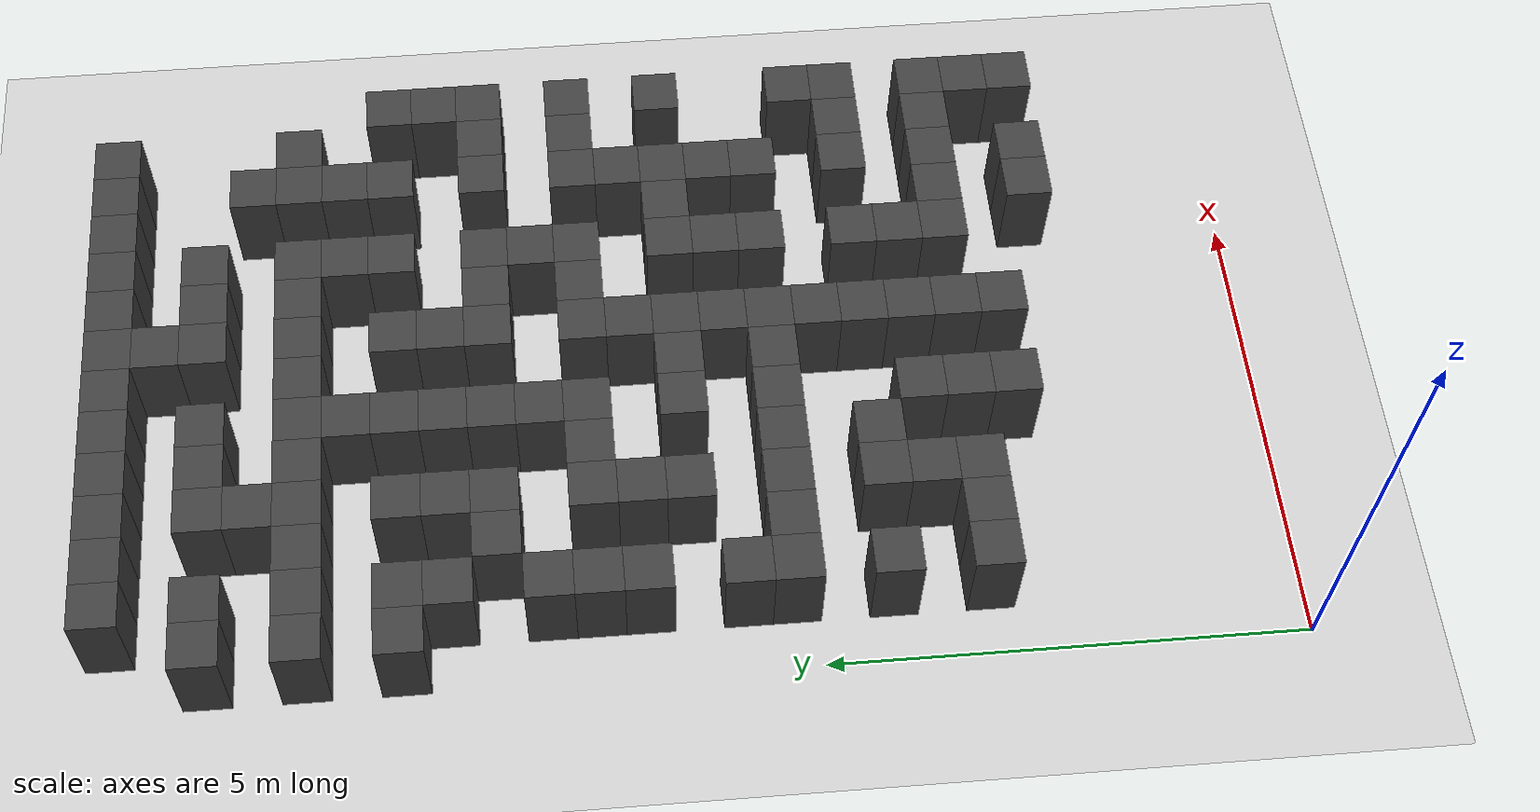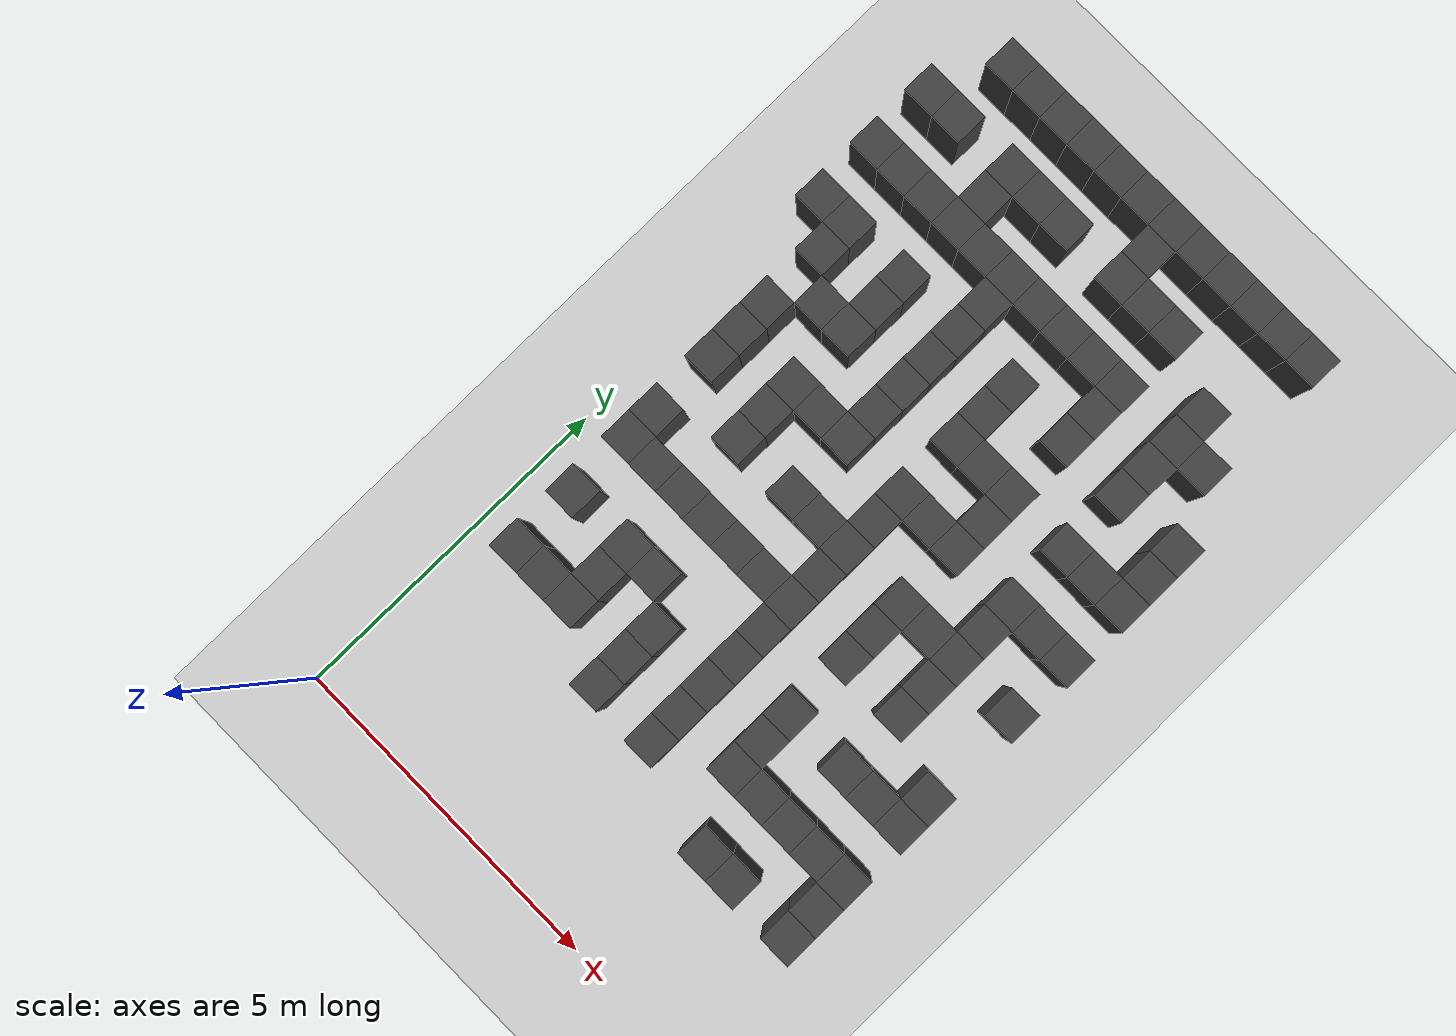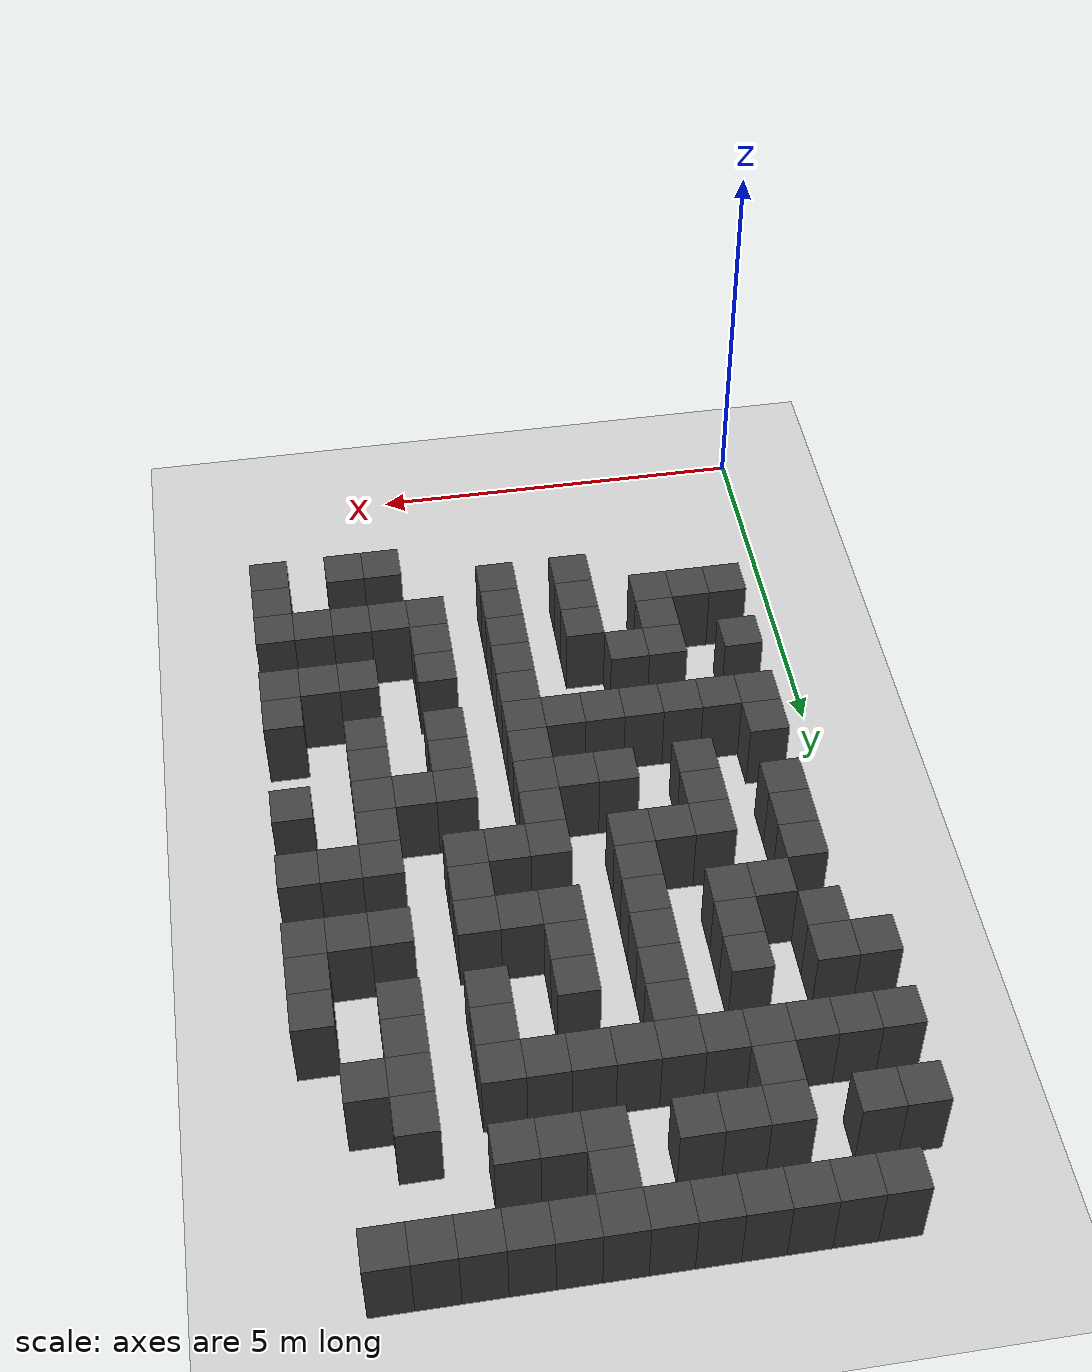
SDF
<sdf version="1.7">
 <world name="map_17508">
  <model name="ground_plane">
   <static>true</static>
   <link name="link">
    <collision name="collision">
     <geometry><plane><normal>0 0 1</normal><size>200 200</size></plane></geometry>
    </collision>
    <visual name="visual">
     <geometry><plane><normal>0 0 1</normal><size>200 200</size></plane></geometry>
     <material><ambient>0.8 0.8 0.8 1</ambient><diffuse>0.8 0.8 0.8 1</diffuse></material>
    </visual>
   </link>
  </model>
  <model name="maze_environment">
   <static>true</static>
   <link name="wall_26">
    <pose>0.750 12.250 0.500 0 0 0</pose>
    <collision name="col"><geometry><box><size>0.5 0.5 1.0</size></box></geometry></collision>
    <visual name="vis">
     <geometry><box><size>0.5 0.5 1.0</size></box></geometry>
     <material><ambient>0.15 0.15 0.15 1</ambient><diffuse>0.25 0.25 0.25 1</diffuse></material>
    </visual>
   </link>
   <link name="wall_27">
    <pose>1.250 12.250 0.500 0 0 0</pose>
    <collision name="col"><geometry><box><size>0.5 0.5 1.0</size></box></geometry></collision>
    <visual name="vis">
     <geometry><box><size>0.5 0.5 1.0</size></box></geometry>
     <material><ambient>0.15 0.15 0.15 1</ambient><diffuse>0.25 0.25 0.25 1</diffuse></material>
    </visual>
   </link>
   <link name="wall_28">
    <pose>1.750 12.250 0.500 0 0 0</pose>
    <collision name="col"><geometry><box><size>0.5 0.5 1.0</size></box></geometry></collision>
    <visual name="vis">
     <geometry><box><size>0.5 0.5 1.0</size></box></geometry>
     <material><ambient>0.15 0.15 0.15 1</ambient><diffuse>0.25 0.25 0.25 1</diffuse></material>
    </visual>
   </link>
   <link name="wall_29">
    <pose>2.250 12.250 0.500 0 0 0</pose>
    <collision name="col"><geometry><box><size>0.5 0.5 1.0</size></box></geometry></collision>
    <visual name="vis">
     <geometry><box><size>0.5 0.5 1.0</size></box></geometry>
     <material><ambient>0.15 0.15 0.15 1</ambient><diffuse>0.25 0.25 0.25 1</diffuse></material>
    </visual>
   </link>
   <link name="wall_30">
    <pose>2.750 12.250 0.500 0 0 0</pose>
    <collision name="col"><geometry><box><size>0.5 0.5 1.0</size></box></geometry></collision>
    <visual name="vis">
     <geometry><box><size>0.5 0.5 1.0</size></box></geometry>
     <material><ambient>0.15 0.15 0.15 1</ambient><diffuse>0.25 0.25 0.25 1</diffuse></material>
    </visual>
   </link>
   <link name="wall_31">
    <pose>3.250 12.250 0.500 0 0 0</pose>
    <collision name="col"><geometry><box><size>0.5 0.5 1.0</size></box></geometry></collision>
    <visual name="vis">
     <geometry><box><size>0.5 0.5 1.0</size></box></geometry>
     <material><ambient>0.15 0.15 0.15 1</ambient><diffuse>0.25 0.25 0.25 1</diffuse></material>
    </visual>
   </link>
   <link name="wall_32">
    <pose>3.750 12.250 0.500 0 0 0</pose>
    <collision name="col"><geometry><box><size>0.5 0.5 1.0</size></box></geometry></collision>
    <visual name="vis">
     <geometry><box><size>0.5 0.5 1.0</size></box></geometry>
     <material><ambient>0.15 0.15 0.15 1</ambient><diffuse>0.25 0.25 0.25 1</diffuse></material>
    </visual>
   </link>
   <link name="wall_33">
    <pose>4.250 12.250 0.500 0 0 0</pose>
    <collision name="col"><geometry><box><size>0.5 0.5 1.0</size></box></geometry></collision>
    <visual name="vis">
     <geometry><box><size>0.5 0.5 1.0</size></box></geometry>
     <material><ambient>0.15 0.15 0.15 1</ambient><diffuse>0.25 0.25 0.25 1</diffuse></material>
    </visual>
   </link>
   <link name="wall_34">
    <pose>4.750 12.250 0.500 0 0 0</pose>
    <collision name="col"><geometry><box><size>0.5 0.5 1.0</size></box></geometry></collision>
    <visual name="vis">
     <geometry><box><size>0.5 0.5 1.0</size></box></geometry>
     <material><ambient>0.15 0.15 0.15 1</ambient><diffuse>0.25 0.25 0.25 1</diffuse></material>
    </visual>
   </link>
   <link name="wall_35">
    <pose>5.250 12.250 0.500 0 0 0</pose>
    <collision name="col"><geometry><box><size>0.5 0.5 1.0</size></box></geometry></collision>
    <visual name="vis">
     <geometry><box><size>0.5 0.5 1.0</size></box></geometry>
     <material><ambient>0.15 0.15 0.15 1</ambient><diffuse>0.25 0.25 0.25 1</diffuse></material>
    </visual>
   </link>
   <link name="wall_36">
    <pose>5.750 12.250 0.500 0 0 0</pose>
    <collision name="col"><geometry><box><size>0.5 0.5 1.0</size></box></geometry></collision>
    <visual name="vis">
     <geometry><box><size>0.5 0.5 1.0</size></box></geometry>
     <material><ambient>0.15 0.15 0.15 1</ambient><diffuse>0.25 0.25 0.25 1</diffuse></material>
    </visual>
   </link>
   <link name="wall_37">
    <pose>6.250 12.250 0.500 0 0 0</pose>
    <collision name="col"><geometry><box><size>0.5 0.5 1.0</size></box></geometry></collision>
    <visual name="vis">
     <geometry><box><size>0.5 0.5 1.0</size></box></geometry>
     <material><ambient>0.15 0.15 0.15 1</ambient><diffuse>0.25 0.25 0.25 1</diffuse></material>
    </visual>
   </link>
   <link name="wall_54">
    <pose>3.750 11.750 0.500 0 0 0</pose>
    <collision name="col"><geometry><box><size>0.5 0.5 1.0</size></box></geometry></collision>
    <visual name="vis">
     <geometry><box><size>0.5 0.5 1.0</size></box></geometry>
     <material><ambient>0.15 0.15 0.15 1</ambient><diffuse>0.25 0.25 0.25 1</diffuse></material>
    </visual>
   </link>
   <link name="wall_76">
    <pose>0.250 11.250 0.500 0 0 0</pose>
    <collision name="col"><geometry><box><size>0.5 0.5 1.0</size></box></geometry></collision>
    <visual name="vis">
     <geometry><box><size>0.5 0.5 1.0</size></box></geometry>
     <material><ambient>0.15 0.15 0.15 1</ambient><diffuse>0.25 0.25 0.25 1</diffuse></material>
    </visual>
   </link>
   <link name="wall_77">
    <pose>0.750 11.250 0.500 0 0 0</pose>
    <collision name="col"><geometry><box><size>0.5 0.5 1.0</size></box></geometry></collision>
    <visual name="vis">
     <geometry><box><size>0.5 0.5 1.0</size></box></geometry>
     <material><ambient>0.15 0.15 0.15 1</ambient><diffuse>0.25 0.25 0.25 1</diffuse></material>
    </visual>
   </link>
   <link name="wall_78">
    <pose>1.750 11.250 0.500 0 0 0</pose>
    <collision name="col"><geometry><box><size>0.5 0.5 1.0</size></box></geometry></collision>
    <visual name="vis">
     <geometry><box><size>0.5 0.5 1.0</size></box></geometry>
     <material><ambient>0.15 0.15 0.15 1</ambient><diffuse>0.25 0.25 0.25 1</diffuse></material>
    </visual>
   </link>
   <link name="wall_79">
    <pose>2.250 11.250 0.500 0 0 0</pose>
    <collision name="col"><geometry><box><size>0.5 0.5 1.0</size></box></geometry></collision>
    <visual name="vis">
     <geometry><box><size>0.5 0.5 1.0</size></box></geometry>
     <material><ambient>0.15 0.15 0.15 1</ambient><diffuse>0.25 0.25 0.25 1</diffuse></material>
    </visual>
   </link>
   <link name="wall_80">
    <pose>2.750 11.250 0.500 0 0 0</pose>
    <collision name="col"><geometry><box><size>0.5 0.5 1.0</size></box></geometry></collision>
    <visual name="vis">
     <geometry><box><size>0.5 0.5 1.0</size></box></geometry>
     <material><ambient>0.15 0.15 0.15 1</ambient><diffuse>0.25 0.25 0.25 1</diffuse></material>
    </visual>
   </link>
   <link name="wall_81">
    <pose>3.750 11.250 0.500 0 0 0</pose>
    <collision name="col"><geometry><box><size>0.5 0.5 1.0</size></box></geometry></collision>
    <visual name="vis">
     <geometry><box><size>0.5 0.5 1.0</size></box></geometry>
     <material><ambient>0.15 0.15 0.15 1</ambient><diffuse>0.25 0.25 0.25 1</diffuse></material>
    </visual>
   </link>
   <link name="wall_82">
    <pose>4.250 11.250 0.500 0 0 0</pose>
    <collision name="col"><geometry><box><size>0.5 0.5 1.0</size></box></geometry></collision>
    <visual name="vis">
     <geometry><box><size>0.5 0.5 1.0</size></box></geometry>
     <material><ambient>0.15 0.15 0.15 1</ambient><diffuse>0.25 0.25 0.25 1</diffuse></material>
    </visual>
   </link>
   <link name="wall_83">
    <pose>4.750 11.250 0.500 0 0 0</pose>
    <collision name="col"><geometry><box><size>0.5 0.5 1.0</size></box></geometry></collision>
    <visual name="vis">
     <geometry><box><size>0.5 0.5 1.0</size></box></geometry>
     <material><ambient>0.15 0.15 0.15 1</ambient><diffuse>0.25 0.25 0.25 1</diffuse></material>
    </visual>
   </link>
   <link name="wall_100">
    <pose>1.750 10.750 0.500 0 0 0</pose>
    <collision name="col"><geometry><box><size>0.5 0.5 1.0</size></box></geometry></collision>
    <visual name="vis">
     <geometry><box><size>0.5 0.5 1.0</size></box></geometry>
     <material><ambient>0.15 0.15 0.15 1</ambient><diffuse>0.25 0.25 0.25 1</diffuse></material>
    </visual>
   </link>
   <link name="wall_101">
    <pose>5.750 10.750 0.500 0 0 0</pose>
    <collision name="col"><geometry><box><size>0.5 0.5 1.0</size></box></geometry></collision>
    <visual name="vis">
     <geometry><box><size>0.5 0.5 1.0</size></box></geometry>
     <material><ambient>0.15 0.15 0.15 1</ambient><diffuse>0.25 0.25 0.25 1</diffuse></material>
    </visual>
   </link>
   <link name="wall_125">
    <pose>0.250 10.250 0.500 0 0 0</pose>
    <collision name="col"><geometry><box><size>0.5 0.5 1.0</size></box></geometry></collision>
    <visual name="vis">
     <geometry><box><size>0.5 0.5 1.0</size></box></geometry>
     <material><ambient>0.15 0.15 0.15 1</ambient><diffuse>0.25 0.25 0.25 1</diffuse></material>
    </visual>
   </link>
   <link name="wall_126">
    <pose>0.750 10.250 0.500 0 0 0</pose>
    <collision name="col"><geometry><box><size>0.5 0.5 1.0</size></box></geometry></collision>
    <visual name="vis">
     <geometry><box><size>0.5 0.5 1.0</size></box></geometry>
     <material><ambient>0.15 0.15 0.15 1</ambient><diffuse>0.25 0.25 0.25 1</diffuse></material>
    </visual>
   </link>
   <link name="wall_127">
    <pose>1.250 10.250 0.500 0 0 0</pose>
    <collision name="col"><geometry><box><size>0.5 0.5 1.0</size></box></geometry></collision>
    <visual name="vis">
     <geometry><box><size>0.5 0.5 1.0</size></box></geometry>
     <material><ambient>0.15 0.15 0.15 1</ambient><diffuse>0.25 0.25 0.25 1</diffuse></material>
    </visual>
   </link>
   <link name="wall_128">
    <pose>1.750 10.250 0.500 0 0 0</pose>
    <collision name="col"><geometry><box><size>0.5 0.5 1.0</size></box></geometry></collision>
    <visual name="vis">
     <geometry><box><size>0.5 0.5 1.0</size></box></geometry>
     <material><ambient>0.15 0.15 0.15 1</ambient><diffuse>0.25 0.25 0.25 1</diffuse></material>
    </visual>
   </link>
   <link name="wall_129">
    <pose>2.250 10.250 0.500 0 0 0</pose>
    <collision name="col"><geometry><box><size>0.5 0.5 1.0</size></box></geometry></collision>
    <visual name="vis">
     <geometry><box><size>0.5 0.5 1.0</size></box></geometry>
     <material><ambient>0.15 0.15 0.15 1</ambient><diffuse>0.25 0.25 0.25 1</diffuse></material>
    </visual>
   </link>
   <link name="wall_130">
    <pose>2.750 10.250 0.500 0 0 0</pose>
    <collision name="col"><geometry><box><size>0.5 0.5 1.0</size></box></geometry></collision>
    <visual name="vis">
     <geometry><box><size>0.5 0.5 1.0</size></box></geometry>
     <material><ambient>0.15 0.15 0.15 1</ambient><diffuse>0.25 0.25 0.25 1</diffuse></material>
    </visual>
   </link>
   <link name="wall_131">
    <pose>3.250 10.250 0.500 0 0 0</pose>
    <collision name="col"><geometry><box><size>0.5 0.5 1.0</size></box></geometry></collision>
    <visual name="vis">
     <geometry><box><size>0.5 0.5 1.0</size></box></geometry>
     <material><ambient>0.15 0.15 0.15 1</ambient><diffuse>0.25 0.25 0.25 1</diffuse></material>
    </visual>
   </link>
   <link name="wall_132">
    <pose>3.750 10.250 0.500 0 0 0</pose>
    <collision name="col"><geometry><box><size>0.5 0.5 1.0</size></box></geometry></collision>
    <visual name="vis">
     <geometry><box><size>0.5 0.5 1.0</size></box></geometry>
     <material><ambient>0.15 0.15 0.15 1</ambient><diffuse>0.25 0.25 0.25 1</diffuse></material>
    </visual>
   </link>
   <link name="wall_133">
    <pose>4.250 10.250 0.500 0 0 0</pose>
    <collision name="col"><geometry><box><size>0.5 0.5 1.0</size></box></geometry></collision>
    <visual name="vis">
     <geometry><box><size>0.5 0.5 1.0</size></box></geometry>
     <material><ambient>0.15 0.15 0.15 1</ambient><diffuse>0.25 0.25 0.25 1</diffuse></material>
    </visual>
   </link>
   <link name="wall_134">
    <pose>4.750 10.250 0.500 0 0 0</pose>
    <collision name="col"><geometry><box><size>0.5 0.5 1.0</size></box></geometry></collision>
    <visual name="vis">
     <geometry><box><size>0.5 0.5 1.0</size></box></geometry>
     <material><ambient>0.15 0.15 0.15 1</ambient><diffuse>0.25 0.25 0.25 1</diffuse></material>
    </visual>
   </link>
   <link name="wall_135">
    <pose>5.750 10.250 0.500 0 0 0</pose>
    <collision name="col"><geometry><box><size>0.5 0.5 1.0</size></box></geometry></collision>
    <visual name="vis">
     <geometry><box><size>0.5 0.5 1.0</size></box></geometry>
     <material><ambient>0.15 0.15 0.15 1</ambient><diffuse>0.25 0.25 0.25 1</diffuse></material>
    </visual>
   </link>
   <link name="wall_136">
    <pose>6.250 10.250 0.500 0 0 0</pose>
    <collision name="col"><geometry><box><size>0.5 0.5 1.0</size></box></geometry></collision>
    <visual name="vis">
     <geometry><box><size>0.5 0.5 1.0</size></box></geometry>
     <material><ambient>0.15 0.15 0.15 1</ambient><diffuse>0.25 0.25 0.25 1</diffuse></material>
    </visual>
   </link>
   <link name="wall_152">
    <pose>2.750 9.750 0.500 0 0 0</pose>
    <collision name="col"><geometry><box><size>0.5 0.5 1.0</size></box></geometry></collision>
    <visual name="vis">
     <geometry><box><size>0.5 0.5 1.0</size></box></geometry>
     <material><ambient>0.15 0.15 0.15 1</ambient><diffuse>0.25 0.25 0.25 1</diffuse></material>
    </visual>
   </link>
   <link name="wall_153">
    <pose>4.750 9.750 0.500 0 0 0</pose>
    <collision name="col"><geometry><box><size>0.5 0.5 1.0</size></box></geometry></collision>
    <visual name="vis">
     <geometry><box><size>0.5 0.5 1.0</size></box></geometry>
     <material><ambient>0.15 0.15 0.15 1</ambient><diffuse>0.25 0.25 0.25 1</diffuse></material>
    </visual>
   </link>
   <link name="wall_154">
    <pose>5.750 9.750 0.500 0 0 0</pose>
    <collision name="col"><geometry><box><size>0.5 0.5 1.0</size></box></geometry></collision>
    <visual name="vis">
     <geometry><box><size>0.5 0.5 1.0</size></box></geometry>
     <material><ambient>0.15 0.15 0.15 1</ambient><diffuse>0.25 0.25 0.25 1</diffuse></material>
    </visual>
   </link>
   <link name="wall_177">
    <pose>0.250 9.250 0.500 0 0 0</pose>
    <collision name="col"><geometry><box><size>0.5 0.5 1.0</size></box></geometry></collision>
    <visual name="vis">
     <geometry><box><size>0.5 0.5 1.0</size></box></geometry>
     <material><ambient>0.15 0.15 0.15 1</ambient><diffuse>0.25 0.25 0.25 1</diffuse></material>
    </visual>
   </link>
   <link name="wall_178">
    <pose>0.750 9.250 0.500 0 0 0</pose>
    <collision name="col"><geometry><box><size>0.5 0.5 1.0</size></box></geometry></collision>
    <visual name="vis">
     <geometry><box><size>0.5 0.5 1.0</size></box></geometry>
     <material><ambient>0.15 0.15 0.15 1</ambient><diffuse>0.25 0.25 0.25 1</diffuse></material>
    </visual>
   </link>
   <link name="wall_179">
    <pose>1.750 9.250 0.500 0 0 0</pose>
    <collision name="col"><geometry><box><size>0.5 0.5 1.0</size></box></geometry></collision>
    <visual name="vis">
     <geometry><box><size>0.5 0.5 1.0</size></box></geometry>
     <material><ambient>0.15 0.15 0.15 1</ambient><diffuse>0.25 0.25 0.25 1</diffuse></material>
    </visual>
   </link>
   <link name="wall_180">
    <pose>2.750 9.250 0.500 0 0 0</pose>
    <collision name="col"><geometry><box><size>0.5 0.5 1.0</size></box></geometry></collision>
    <visual name="vis">
     <geometry><box><size>0.5 0.5 1.0</size></box></geometry>
     <material><ambient>0.15 0.15 0.15 1</ambient><diffuse>0.25 0.25 0.25 1</diffuse></material>
    </visual>
   </link>
   <link name="wall_181">
    <pose>3.750 9.250 0.500 0 0 0</pose>
    <collision name="col"><geometry><box><size>0.5 0.5 1.0</size></box></geometry></collision>
    <visual name="vis">
     <geometry><box><size>0.5 0.5 1.0</size></box></geometry>
     <material><ambient>0.15 0.15 0.15 1</ambient><diffuse>0.25 0.25 0.25 1</diffuse></material>
    </visual>
   </link>
   <link name="wall_182">
    <pose>4.750 9.250 0.500 0 0 0</pose>
    <collision name="col"><geometry><box><size>0.5 0.5 1.0</size></box></geometry></collision>
    <visual name="vis">
     <geometry><box><size>0.5 0.5 1.0</size></box></geometry>
     <material><ambient>0.15 0.15 0.15 1</ambient><diffuse>0.25 0.25 0.25 1</diffuse></material>
    </visual>
   </link>
   <link name="wall_183">
    <pose>5.750 9.250 0.500 0 0 0</pose>
    <collision name="col"><geometry><box><size>0.5 0.5 1.0</size></box></geometry></collision>
    <visual name="vis">
     <geometry><box><size>0.5 0.5 1.0</size></box></geometry>
     <material><ambient>0.15 0.15 0.15 1</ambient><diffuse>0.25 0.25 0.25 1</diffuse></material>
    </visual>
   </link>
   <link name="wall_184">
    <pose>6.750 9.250 0.500 0 0 0</pose>
    <collision name="col"><geometry><box><size>0.5 0.5 1.0</size></box></geometry></collision>
    <visual name="vis">
     <geometry><box><size>0.5 0.5 1.0</size></box></geometry>
     <material><ambient>0.15 0.15 0.15 1</ambient><diffuse>0.25 0.25 0.25 1</diffuse></material>
    </visual>
   </link>
   <link name="wall_196">
    <pose>0.750 8.750 0.500 0 0 0</pose>
    <collision name="col"><geometry><box><size>0.5 0.5 1.0</size></box></geometry></collision>
    <visual name="vis">
     <geometry><box><size>0.5 0.5 1.0</size></box></geometry>
     <material><ambient>0.15 0.15 0.15 1</ambient><diffuse>0.25 0.25 0.25 1</diffuse></material>
    </visual>
   </link>
   <link name="wall_197">
    <pose>1.750 8.750 0.500 0 0 0</pose>
    <collision name="col"><geometry><box><size>0.5 0.5 1.0</size></box></geometry></collision>
    <visual name="vis">
     <geometry><box><size>0.5 0.5 1.0</size></box></geometry>
     <material><ambient>0.15 0.15 0.15 1</ambient><diffuse>0.25 0.25 0.25 1</diffuse></material>
    </visual>
   </link>
   <link name="wall_198">
    <pose>2.750 8.750 0.500 0 0 0</pose>
    <collision name="col"><geometry><box><size>0.5 0.5 1.0</size></box></geometry></collision>
    <visual name="vis">
     <geometry><box><size>0.5 0.5 1.0</size></box></geometry>
     <material><ambient>0.15 0.15 0.15 1</ambient><diffuse>0.25 0.25 0.25 1</diffuse></material>
    </visual>
   </link>
   <link name="wall_199">
    <pose>3.750 8.750 0.500 0 0 0</pose>
    <collision name="col"><geometry><box><size>0.5 0.5 1.0</size></box></geometry></collision>
    <visual name="vis">
     <geometry><box><size>0.5 0.5 1.0</size></box></geometry>
     <material><ambient>0.15 0.15 0.15 1</ambient><diffuse>0.25 0.25 0.25 1</diffuse></material>
    </visual>
   </link>
   <link name="wall_200">
    <pose>6.750 8.750 0.500 0 0 0</pose>
    <collision name="col"><geometry><box><size>0.5 0.5 1.0</size></box></geometry></collision>
    <visual name="vis">
     <geometry><box><size>0.5 0.5 1.0</size></box></geometry>
     <material><ambient>0.15 0.15 0.15 1</ambient><diffuse>0.25 0.25 0.25 1</diffuse></material>
    </visual>
   </link>
   <link name="wall_225">
    <pose>1.250 8.250 0.500 0 0 0</pose>
    <collision name="col"><geometry><box><size>0.5 0.5 1.0</size></box></geometry></collision>
    <visual name="vis">
     <geometry><box><size>0.5 0.5 1.0</size></box></geometry>
     <material><ambient>0.15 0.15 0.15 1</ambient><diffuse>0.25 0.25 0.25 1</diffuse></material>
    </visual>
   </link>
   <link name="wall_226">
    <pose>1.750 8.250 0.500 0 0 0</pose>
    <collision name="col"><geometry><box><size>0.5 0.5 1.0</size></box></geometry></collision>
    <visual name="vis">
     <geometry><box><size>0.5 0.5 1.0</size></box></geometry>
     <material><ambient>0.15 0.15 0.15 1</ambient><diffuse>0.25 0.25 0.25 1</diffuse></material>
    </visual>
   </link>
   <link name="wall_227">
    <pose>2.750 8.250 0.500 0 0 0</pose>
    <collision name="col"><geometry><box><size>0.5 0.5 1.0</size></box></geometry></collision>
    <visual name="vis">
     <geometry><box><size>0.5 0.5 1.0</size></box></geometry>
     <material><ambient>0.15 0.15 0.15 1</ambient><diffuse>0.25 0.25 0.25 1</diffuse></material>
    </visual>
   </link>
   <link name="wall_228">
    <pose>3.750 8.250 0.500 0 0 0</pose>
    <collision name="col"><geometry><box><size>0.5 0.5 1.0</size></box></geometry></collision>
    <visual name="vis">
     <geometry><box><size>0.5 0.5 1.0</size></box></geometry>
     <material><ambient>0.15 0.15 0.15 1</ambient><diffuse>0.25 0.25 0.25 1</diffuse></material>
    </visual>
   </link>
   <link name="wall_229">
    <pose>4.250 8.250 0.500 0 0 0</pose>
    <collision name="col"><geometry><box><size>0.5 0.5 1.0</size></box></geometry></collision>
    <visual name="vis">
     <geometry><box><size>0.5 0.5 1.0</size></box></geometry>
     <material><ambient>0.15 0.15 0.15 1</ambient><diffuse>0.25 0.25 0.25 1</diffuse></material>
    </visual>
   </link>
   <link name="wall_230">
    <pose>4.750 8.250 0.500 0 0 0</pose>
    <collision name="col"><geometry><box><size>0.5 0.5 1.0</size></box></geometry></collision>
    <visual name="vis">
     <geometry><box><size>0.5 0.5 1.0</size></box></geometry>
     <material><ambient>0.15 0.15 0.15 1</ambient><diffuse>0.25 0.25 0.25 1</diffuse></material>
    </visual>
   </link>
   <link name="wall_231">
    <pose>5.750 8.250 0.500 0 0 0</pose>
    <collision name="col"><geometry><box><size>0.5 0.5 1.0</size></box></geometry></collision>
    <visual name="vis">
     <geometry><box><size>0.5 0.5 1.0</size></box></geometry>
     <material><ambient>0.15 0.15 0.15 1</ambient><diffuse>0.25 0.25 0.25 1</diffuse></material>
    </visual>
   </link>
   <link name="wall_232">
    <pose>6.250 8.250 0.500 0 0 0</pose>
    <collision name="col"><geometry><box><size>0.5 0.5 1.0</size></box></geometry></collision>
    <visual name="vis">
     <geometry><box><size>0.5 0.5 1.0</size></box></geometry>
     <material><ambient>0.15 0.15 0.15 1</ambient><diffuse>0.25 0.25 0.25 1</diffuse></material>
    </visual>
   </link>
   <link name="wall_233">
    <pose>6.750 8.250 0.500 0 0 0</pose>
    <collision name="col"><geometry><box><size>0.5 0.5 1.0</size></box></geometry></collision>
    <visual name="vis">
     <geometry><box><size>0.5 0.5 1.0</size></box></geometry>
     <material><ambient>0.15 0.15 0.15 1</ambient><diffuse>0.25 0.25 0.25 1</diffuse></material>
    </visual>
   </link>
   <link name="wall_250">
    <pose>0.750 7.750 0.500 0 0 0</pose>
    <collision name="col"><geometry><box><size>0.5 0.5 1.0</size></box></geometry></collision>
    <visual name="vis">
     <geometry><box><size>0.5 0.5 1.0</size></box></geometry>
     <material><ambient>0.15 0.15 0.15 1</ambient><diffuse>0.25 0.25 0.25 1</diffuse></material>
    </visual>
   </link>
   <link name="wall_251">
    <pose>2.750 7.750 0.500 0 0 0</pose>
    <collision name="col"><geometry><box><size>0.5 0.5 1.0</size></box></geometry></collision>
    <visual name="vis">
     <geometry><box><size>0.5 0.5 1.0</size></box></geometry>
     <material><ambient>0.15 0.15 0.15 1</ambient><diffuse>0.25 0.25 0.25 1</diffuse></material>
    </visual>
   </link>
   <link name="wall_252">
    <pose>4.750 7.750 0.500 0 0 0</pose>
    <collision name="col"><geometry><box><size>0.5 0.5 1.0</size></box></geometry></collision>
    <visual name="vis">
     <geometry><box><size>0.5 0.5 1.0</size></box></geometry>
     <material><ambient>0.15 0.15 0.15 1</ambient><diffuse>0.25 0.25 0.25 1</diffuse></material>
    </visual>
   </link>
   <link name="wall_271">
    <pose>0.750 7.250 0.500 0 0 0</pose>
    <collision name="col"><geometry><box><size>0.5 0.5 1.0</size></box></geometry></collision>
    <visual name="vis">
     <geometry><box><size>0.5 0.5 1.0</size></box></geometry>
     <material><ambient>0.15 0.15 0.15 1</ambient><diffuse>0.25 0.25 0.25 1</diffuse></material>
    </visual>
   </link>
   <link name="wall_272">
    <pose>1.750 7.250 0.500 0 0 0</pose>
    <collision name="col"><geometry><box><size>0.5 0.5 1.0</size></box></geometry></collision>
    <visual name="vis">
     <geometry><box><size>0.5 0.5 1.0</size></box></geometry>
     <material><ambient>0.15 0.15 0.15 1</ambient><diffuse>0.25 0.25 0.25 1</diffuse></material>
    </visual>
   </link>
   <link name="wall_273">
    <pose>2.250 7.250 0.500 0 0 0</pose>
    <collision name="col"><geometry><box><size>0.5 0.5 1.0</size></box></geometry></collision>
    <visual name="vis">
     <geometry><box><size>0.5 0.5 1.0</size></box></geometry>
     <material><ambient>0.15 0.15 0.15 1</ambient><diffuse>0.25 0.25 0.25 1</diffuse></material>
    </visual>
   </link>
   <link name="wall_274">
    <pose>2.750 7.250 0.500 0 0 0</pose>
    <collision name="col"><geometry><box><size>0.5 0.5 1.0</size></box></geometry></collision>
    <visual name="vis">
     <geometry><box><size>0.5 0.5 1.0</size></box></geometry>
     <material><ambient>0.15 0.15 0.15 1</ambient><diffuse>0.25 0.25 0.25 1</diffuse></material>
    </visual>
   </link>
   <link name="wall_275">
    <pose>3.750 7.250 0.500 0 0 0</pose>
    <collision name="col"><geometry><box><size>0.5 0.5 1.0</size></box></geometry></collision>
    <visual name="vis">
     <geometry><box><size>0.5 0.5 1.0</size></box></geometry>
     <material><ambient>0.15 0.15 0.15 1</ambient><diffuse>0.25 0.25 0.25 1</diffuse></material>
    </visual>
   </link>
   <link name="wall_276">
    <pose>4.250 7.250 0.500 0 0 0</pose>
    <collision name="col"><geometry><box><size>0.5 0.5 1.0</size></box></geometry></collision>
    <visual name="vis">
     <geometry><box><size>0.5 0.5 1.0</size></box></geometry>
     <material><ambient>0.15 0.15 0.15 1</ambient><diffuse>0.25 0.25 0.25 1</diffuse></material>
    </visual>
   </link>
   <link name="wall_277">
    <pose>4.750 7.250 0.500 0 0 0</pose>
    <collision name="col"><geometry><box><size>0.5 0.5 1.0</size></box></geometry></collision>
    <visual name="vis">
     <geometry><box><size>0.5 0.5 1.0</size></box></geometry>
     <material><ambient>0.15 0.15 0.15 1</ambient><diffuse>0.25 0.25 0.25 1</diffuse></material>
    </visual>
   </link>
   <link name="wall_278">
    <pose>5.750 7.250 0.500 0 0 0</pose>
    <collision name="col"><geometry><box><size>0.5 0.5 1.0</size></box></geometry></collision>
    <visual name="vis">
     <geometry><box><size>0.5 0.5 1.0</size></box></geometry>
     <material><ambient>0.15 0.15 0.15 1</ambient><diffuse>0.25 0.25 0.25 1</diffuse></material>
    </visual>
   </link>
   <link name="wall_279">
    <pose>6.250 7.250 0.500 0 0 0</pose>
    <collision name="col"><geometry><box><size>0.5 0.5 1.0</size></box></geometry></collision>
    <visual name="vis">
     <geometry><box><size>0.5 0.5 1.0</size></box></geometry>
     <material><ambient>0.15 0.15 0.15 1</ambient><diffuse>0.25 0.25 0.25 1</diffuse></material>
    </visual>
   </link>
   <link name="wall_280">
    <pose>6.750 7.250 0.500 0 0 0</pose>
    <collision name="col"><geometry><box><size>0.5 0.5 1.0</size></box></geometry></collision>
    <visual name="vis">
     <geometry><box><size>0.5 0.5 1.0</size></box></geometry>
     <material><ambient>0.15 0.15 0.15 1</ambient><diffuse>0.25 0.25 0.25 1</diffuse></material>
    </visual>
   </link>
   <link name="wall_296">
    <pose>0.750 6.750 0.500 0 0 0</pose>
    <collision name="col"><geometry><box><size>0.5 0.5 1.0</size></box></geometry></collision>
    <visual name="vis">
     <geometry><box><size>0.5 0.5 1.0</size></box></geometry>
     <material><ambient>0.15 0.15 0.15 1</ambient><diffuse>0.25 0.25 0.25 1</diffuse></material>
    </visual>
   </link>
   <link name="wall_297">
    <pose>1.750 6.750 0.500 0 0 0</pose>
    <collision name="col"><geometry><box><size>0.5 0.5 1.0</size></box></geometry></collision>
    <visual name="vis">
     <geometry><box><size>0.5 0.5 1.0</size></box></geometry>
     <material><ambient>0.15 0.15 0.15 1</ambient><diffuse>0.25 0.25 0.25 1</diffuse></material>
    </visual>
   </link>
   <link name="wall_298">
    <pose>3.750 6.750 0.500 0 0 0</pose>
    <collision name="col"><geometry><box><size>0.5 0.5 1.0</size></box></geometry></collision>
    <visual name="vis">
     <geometry><box><size>0.5 0.5 1.0</size></box></geometry>
     <material><ambient>0.15 0.15 0.15 1</ambient><diffuse>0.25 0.25 0.25 1</diffuse></material>
    </visual>
   </link>
   <link name="wall_299">
    <pose>5.750 6.750 0.500 0 0 0</pose>
    <collision name="col"><geometry><box><size>0.5 0.5 1.0</size></box></geometry></collision>
    <visual name="vis">
     <geometry><box><size>0.5 0.5 1.0</size></box></geometry>
     <material><ambient>0.15 0.15 0.15 1</ambient><diffuse>0.25 0.25 0.25 1</diffuse></material>
    </visual>
   </link>
   <link name="wall_320">
    <pose>1.750 6.250 0.500 0 0 0</pose>
    <collision name="col"><geometry><box><size>0.5 0.5 1.0</size></box></geometry></collision>
    <visual name="vis">
     <geometry><box><size>0.5 0.5 1.0</size></box></geometry>
     <material><ambient>0.15 0.15 0.15 1</ambient><diffuse>0.25 0.25 0.25 1</diffuse></material>
    </visual>
   </link>
   <link name="wall_321">
    <pose>2.750 6.250 0.500 0 0 0</pose>
    <collision name="col"><geometry><box><size>0.5 0.5 1.0</size></box></geometry></collision>
    <visual name="vis">
     <geometry><box><size>0.5 0.5 1.0</size></box></geometry>
     <material><ambient>0.15 0.15 0.15 1</ambient><diffuse>0.25 0.25 0.25 1</diffuse></material>
    </visual>
   </link>
   <link name="wall_322">
    <pose>3.250 6.250 0.500 0 0 0</pose>
    <collision name="col"><geometry><box><size>0.5 0.5 1.0</size></box></geometry></collision>
    <visual name="vis">
     <geometry><box><size>0.5 0.5 1.0</size></box></geometry>
     <material><ambient>0.15 0.15 0.15 1</ambient><diffuse>0.25 0.25 0.25 1</diffuse></material>
    </visual>
   </link>
   <link name="wall_323">
    <pose>3.750 6.250 0.500 0 0 0</pose>
    <collision name="col"><geometry><box><size>0.5 0.5 1.0</size></box></geometry></collision>
    <visual name="vis">
     <geometry><box><size>0.5 0.5 1.0</size></box></geometry>
     <material><ambient>0.15 0.15 0.15 1</ambient><diffuse>0.25 0.25 0.25 1</diffuse></material>
    </visual>
   </link>
   <link name="wall_324">
    <pose>4.750 6.250 0.500 0 0 0</pose>
    <collision name="col"><geometry><box><size>0.5 0.5 1.0</size></box></geometry></collision>
    <visual name="vis">
     <geometry><box><size>0.5 0.5 1.0</size></box></geometry>
     <material><ambient>0.15 0.15 0.15 1</ambient><diffuse>0.25 0.25 0.25 1</diffuse></material>
    </visual>
   </link>
   <link name="wall_325">
    <pose>5.250 6.250 0.500 0 0 0</pose>
    <collision name="col"><geometry><box><size>0.5 0.5 1.0</size></box></geometry></collision>
    <visual name="vis">
     <geometry><box><size>0.5 0.5 1.0</size></box></geometry>
     <material><ambient>0.15 0.15 0.15 1</ambient><diffuse>0.25 0.25 0.25 1</diffuse></material>
    </visual>
   </link>
   <link name="wall_326">
    <pose>5.750 6.250 0.500 0 0 0</pose>
    <collision name="col"><geometry><box><size>0.5 0.5 1.0</size></box></geometry></collision>
    <visual name="vis">
     <geometry><box><size>0.5 0.5 1.0</size></box></geometry>
     <material><ambient>0.15 0.15 0.15 1</ambient><diffuse>0.25 0.25 0.25 1</diffuse></material>
    </visual>
   </link>
   <link name="wall_327">
    <pose>6.750 6.250 0.500 0 0 0</pose>
    <collision name="col"><geometry><box><size>0.5 0.5 1.0</size></box></geometry></collision>
    <visual name="vis">
     <geometry><box><size>0.5 0.5 1.0</size></box></geometry>
     <material><ambient>0.15 0.15 0.15 1</ambient><diffuse>0.25 0.25 0.25 1</diffuse></material>
    </visual>
   </link>
   <link name="wall_345">
    <pose>0.750 5.750 0.500 0 0 0</pose>
    <collision name="col"><geometry><box><size>0.5 0.5 1.0</size></box></geometry></collision>
    <visual name="vis">
     <geometry><box><size>0.5 0.5 1.0</size></box></geometry>
     <material><ambient>0.15 0.15 0.15 1</ambient><diffuse>0.25 0.25 0.25 1</diffuse></material>
    </visual>
   </link>
   <link name="wall_346">
    <pose>3.750 5.750 0.500 0 0 0</pose>
    <collision name="col"><geometry><box><size>0.5 0.5 1.0</size></box></geometry></collision>
    <visual name="vis">
     <geometry><box><size>0.5 0.5 1.0</size></box></geometry>
     <material><ambient>0.15 0.15 0.15 1</ambient><diffuse>0.25 0.25 0.25 1</diffuse></material>
    </visual>
   </link>
   <link name="wall_347">
    <pose>4.750 5.750 0.500 0 0 0</pose>
    <collision name="col"><geometry><box><size>0.5 0.5 1.0</size></box></geometry></collision>
    <visual name="vis">
     <geometry><box><size>0.5 0.5 1.0</size></box></geometry>
     <material><ambient>0.15 0.15 0.15 1</ambient><diffuse>0.25 0.25 0.25 1</diffuse></material>
    </visual>
   </link>
   <link name="wall_348">
    <pose>5.750 5.750 0.500 0 0 0</pose>
    <collision name="col"><geometry><box><size>0.5 0.5 1.0</size></box></geometry></collision>
    <visual name="vis">
     <geometry><box><size>0.5 0.5 1.0</size></box></geometry>
     <material><ambient>0.15 0.15 0.15 1</ambient><diffuse>0.25 0.25 0.25 1</diffuse></material>
    </visual>
   </link>
   <link name="wall_367">
    <pose>0.750 5.250 0.500 0 0 0</pose>
    <collision name="col"><geometry><box><size>0.5 0.5 1.0</size></box></geometry></collision>
    <visual name="vis">
     <geometry><box><size>0.5 0.5 1.0</size></box></geometry>
     <material><ambient>0.15 0.15 0.15 1</ambient><diffuse>0.25 0.25 0.25 1</diffuse></material>
    </visual>
   </link>
   <link name="wall_368">
    <pose>1.250 5.250 0.500 0 0 0</pose>
    <collision name="col"><geometry><box><size>0.5 0.5 1.0</size></box></geometry></collision>
    <visual name="vis">
     <geometry><box><size>0.5 0.5 1.0</size></box></geometry>
     <material><ambient>0.15 0.15 0.15 1</ambient><diffuse>0.25 0.25 0.25 1</diffuse></material>
    </visual>
   </link>
   <link name="wall_369">
    <pose>1.750 5.250 0.500 0 0 0</pose>
    <collision name="col"><geometry><box><size>0.5 0.5 1.0</size></box></geometry></collision>
    <visual name="vis">
     <geometry><box><size>0.5 0.5 1.0</size></box></geometry>
     <material><ambient>0.15 0.15 0.15 1</ambient><diffuse>0.25 0.25 0.25 1</diffuse></material>
    </visual>
   </link>
   <link name="wall_370">
    <pose>2.250 5.250 0.500 0 0 0</pose>
    <collision name="col"><geometry><box><size>0.5 0.5 1.0</size></box></geometry></collision>
    <visual name="vis">
     <geometry><box><size>0.5 0.5 1.0</size></box></geometry>
     <material><ambient>0.15 0.15 0.15 1</ambient><diffuse>0.25 0.25 0.25 1</diffuse></material>
    </visual>
   </link>
   <link name="wall_371">
    <pose>2.750 5.250 0.500 0 0 0</pose>
    <collision name="col"><geometry><box><size>0.5 0.5 1.0</size></box></geometry></collision>
    <visual name="vis">
     <geometry><box><size>0.5 0.5 1.0</size></box></geometry>
     <material><ambient>0.15 0.15 0.15 1</ambient><diffuse>0.25 0.25 0.25 1</diffuse></material>
    </visual>
   </link>
   <link name="wall_372">
    <pose>3.250 5.250 0.500 0 0 0</pose>
    <collision name="col"><geometry><box><size>0.5 0.5 1.0</size></box></geometry></collision>
    <visual name="vis">
     <geometry><box><size>0.5 0.5 1.0</size></box></geometry>
     <material><ambient>0.15 0.15 0.15 1</ambient><diffuse>0.25 0.25 0.25 1</diffuse></material>
    </visual>
   </link>
   <link name="wall_373">
    <pose>3.750 5.250 0.500 0 0 0</pose>
    <collision name="col"><geometry><box><size>0.5 0.5 1.0</size></box></geometry></collision>
    <visual name="vis">
     <geometry><box><size>0.5 0.5 1.0</size></box></geometry>
     <material><ambient>0.15 0.15 0.15 1</ambient><diffuse>0.25 0.25 0.25 1</diffuse></material>
    </visual>
   </link>
   <link name="wall_374">
    <pose>4.750 5.250 0.500 0 0 0</pose>
    <collision name="col"><geometry><box><size>0.5 0.5 1.0</size></box></geometry></collision>
    <visual name="vis">
     <geometry><box><size>0.5 0.5 1.0</size></box></geometry>
     <material><ambient>0.15 0.15 0.15 1</ambient><diffuse>0.25 0.25 0.25 1</diffuse></material>
    </visual>
   </link>
   <link name="wall_375">
    <pose>5.750 5.250 0.500 0 0 0</pose>
    <collision name="col"><geometry><box><size>0.5 0.5 1.0</size></box></geometry></collision>
    <visual name="vis">
     <geometry><box><size>0.5 0.5 1.0</size></box></geometry>
     <material><ambient>0.15 0.15 0.15 1</ambient><diffuse>0.25 0.25 0.25 1</diffuse></material>
    </visual>
   </link>
   <link name="wall_392">
    <pose>3.750 4.750 0.500 0 0 0</pose>
    <collision name="col"><geometry><box><size>0.5 0.5 1.0</size></box></geometry></collision>
    <visual name="vis">
     <geometry><box><size>0.5 0.5 1.0</size></box></geometry>
     <material><ambient>0.15 0.15 0.15 1</ambient><diffuse>0.25 0.25 0.25 1</diffuse></material>
    </visual>
   </link>
   <link name="wall_393">
    <pose>6.750 4.750 0.500 0 0 0</pose>
    <collision name="col"><geometry><box><size>0.5 0.5 1.0</size></box></geometry></collision>
    <visual name="vis">
     <geometry><box><size>0.5 0.5 1.0</size></box></geometry>
     <material><ambient>0.15 0.15 0.15 1</ambient><diffuse>0.25 0.25 0.25 1</diffuse></material>
    </visual>
   </link>
   <link name="wall_414">
    <pose>0.750 4.250 0.500 0 0 0</pose>
    <collision name="col"><geometry><box><size>0.5 0.5 1.0</size></box></geometry></collision>
    <visual name="vis">
     <geometry><box><size>0.5 0.5 1.0</size></box></geometry>
     <material><ambient>0.15 0.15 0.15 1</ambient><diffuse>0.25 0.25 0.25 1</diffuse></material>
    </visual>
   </link>
   <link name="wall_415">
    <pose>1.750 4.250 0.500 0 0 0</pose>
    <collision name="col"><geometry><box><size>0.5 0.5 1.0</size></box></geometry></collision>
    <visual name="vis">
     <geometry><box><size>0.5 0.5 1.0</size></box></geometry>
     <material><ambient>0.15 0.15 0.15 1</ambient><diffuse>0.25 0.25 0.25 1</diffuse></material>
    </visual>
   </link>
   <link name="wall_416">
    <pose>2.250 4.250 0.500 0 0 0</pose>
    <collision name="col"><geometry><box><size>0.5 0.5 1.0</size></box></geometry></collision>
    <visual name="vis">
     <geometry><box><size>0.5 0.5 1.0</size></box></geometry>
     <material><ambient>0.15 0.15 0.15 1</ambient><diffuse>0.25 0.25 0.25 1</diffuse></material>
    </visual>
   </link>
   <link name="wall_417">
    <pose>3.750 4.250 0.500 0 0 0</pose>
    <collision name="col"><geometry><box><size>0.5 0.5 1.0</size></box></geometry></collision>
    <visual name="vis">
     <geometry><box><size>0.5 0.5 1.0</size></box></geometry>
     <material><ambient>0.15 0.15 0.15 1</ambient><diffuse>0.25 0.25 0.25 1</diffuse></material>
    </visual>
   </link>
   <link name="wall_418">
    <pose>4.750 4.250 0.500 0 0 0</pose>
    <collision name="col"><geometry><box><size>0.5 0.5 1.0</size></box></geometry></collision>
    <visual name="vis">
     <geometry><box><size>0.5 0.5 1.0</size></box></geometry>
     <material><ambient>0.15 0.15 0.15 1</ambient><diffuse>0.25 0.25 0.25 1</diffuse></material>
    </visual>
   </link>
   <link name="wall_419">
    <pose>5.750 4.250 0.500 0 0 0</pose>
    <collision name="col"><geometry><box><size>0.5 0.5 1.0</size></box></geometry></collision>
    <visual name="vis">
     <geometry><box><size>0.5 0.5 1.0</size></box></geometry>
     <material><ambient>0.15 0.15 0.15 1</ambient><diffuse>0.25 0.25 0.25 1</diffuse></material>
    </visual>
   </link>
   <link name="wall_420">
    <pose>6.250 4.250 0.500 0 0 0</pose>
    <collision name="col"><geometry><box><size>0.5 0.5 1.0</size></box></geometry></collision>
    <visual name="vis">
     <geometry><box><size>0.5 0.5 1.0</size></box></geometry>
     <material><ambient>0.15 0.15 0.15 1</ambient><diffuse>0.25 0.25 0.25 1</diffuse></material>
    </visual>
   </link>
   <link name="wall_421">
    <pose>6.750 4.250 0.500 0 0 0</pose>
    <collision name="col"><geometry><box><size>0.5 0.5 1.0</size></box></geometry></collision>
    <visual name="vis">
     <geometry><box><size>0.5 0.5 1.0</size></box></geometry>
     <material><ambient>0.15 0.15 0.15 1</ambient><diffuse>0.25 0.25 0.25 1</diffuse></material>
    </visual>
   </link>
   <link name="wall_437">
    <pose>1.750 3.750 0.500 0 0 0</pose>
    <collision name="col"><geometry><box><size>0.5 0.5 1.0</size></box></geometry></collision>
    <visual name="vis">
     <geometry><box><size>0.5 0.5 1.0</size></box></geometry>
     <material><ambient>0.15 0.15 0.15 1</ambient><diffuse>0.25 0.25 0.25 1</diffuse></material>
    </visual>
   </link>
   <link name="wall_438">
    <pose>2.750 3.750 0.500 0 0 0</pose>
    <collision name="col"><geometry><box><size>0.5 0.5 1.0</size></box></geometry></collision>
    <visual name="vis">
     <geometry><box><size>0.5 0.5 1.0</size></box></geometry>
     <material><ambient>0.15 0.15 0.15 1</ambient><diffuse>0.25 0.25 0.25 1</diffuse></material>
    </visual>
   </link>
   <link name="wall_439">
    <pose>3.750 3.750 0.500 0 0 0</pose>
    <collision name="col"><geometry><box><size>0.5 0.5 1.0</size></box></geometry></collision>
    <visual name="vis">
     <geometry><box><size>0.5 0.5 1.0</size></box></geometry>
     <material><ambient>0.15 0.15 0.15 1</ambient><diffuse>0.25 0.25 0.25 1</diffuse></material>
    </visual>
   </link>
   <link name="wall_440">
    <pose>4.750 3.750 0.500 0 0 0</pose>
    <collision name="col"><geometry><box><size>0.5 0.5 1.0</size></box></geometry></collision>
    <visual name="vis">
     <geometry><box><size>0.5 0.5 1.0</size></box></geometry>
     <material><ambient>0.15 0.15 0.15 1</ambient><diffuse>0.25 0.25 0.25 1</diffuse></material>
    </visual>
   </link>
   <link name="wall_462">
    <pose>0.750 3.250 0.500 0 0 0</pose>
    <collision name="col"><geometry><box><size>0.5 0.5 1.0</size></box></geometry></collision>
    <visual name="vis">
     <geometry><box><size>0.5 0.5 1.0</size></box></geometry>
     <material><ambient>0.15 0.15 0.15 1</ambient><diffuse>0.25 0.25 0.25 1</diffuse></material>
    </visual>
   </link>
   <link name="wall_463">
    <pose>1.250 3.250 0.500 0 0 0</pose>
    <collision name="col"><geometry><box><size>0.5 0.5 1.0</size></box></geometry></collision>
    <visual name="vis">
     <geometry><box><size>0.5 0.5 1.0</size></box></geometry>
     <material><ambient>0.15 0.15 0.15 1</ambient><diffuse>0.25 0.25 0.25 1</diffuse></material>
    </visual>
   </link>
   <link name="wall_464">
    <pose>1.750 3.250 0.500 0 0 0</pose>
    <collision name="col"><geometry><box><size>0.5 0.5 1.0</size></box></geometry></collision>
    <visual name="vis">
     <geometry><box><size>0.5 0.5 1.0</size></box></geometry>
     <material><ambient>0.15 0.15 0.15 1</ambient><diffuse>0.25 0.25 0.25 1</diffuse></material>
    </visual>
   </link>
   <link name="wall_465">
    <pose>2.750 3.250 0.500 0 0 0</pose>
    <collision name="col"><geometry><box><size>0.5 0.5 1.0</size></box></geometry></collision>
    <visual name="vis">
     <geometry><box><size>0.5 0.5 1.0</size></box></geometry>
     <material><ambient>0.15 0.15 0.15 1</ambient><diffuse>0.25 0.25 0.25 1</diffuse></material>
    </visual>
   </link>
   <link name="wall_466">
    <pose>3.750 3.250 0.500 0 0 0</pose>
    <collision name="col"><geometry><box><size>0.5 0.5 1.0</size></box></geometry></collision>
    <visual name="vis">
     <geometry><box><size>0.5 0.5 1.0</size></box></geometry>
     <material><ambient>0.15 0.15 0.15 1</ambient><diffuse>0.25 0.25 0.25 1</diffuse></material>
    </visual>
   </link>
   <link name="wall_467">
    <pose>4.750 3.250 0.500 0 0 0</pose>
    <collision name="col"><geometry><box><size>0.5 0.5 1.0</size></box></geometry></collision>
    <visual name="vis">
     <geometry><box><size>0.5 0.5 1.0</size></box></geometry>
     <material><ambient>0.15 0.15 0.15 1</ambient><diffuse>0.25 0.25 0.25 1</diffuse></material>
    </visual>
   </link>
   <link name="wall_468">
    <pose>5.250 3.250 0.500 0 0 0</pose>
    <collision name="col"><geometry><box><size>0.5 0.5 1.0</size></box></geometry></collision>
    <visual name="vis">
     <geometry><box><size>0.5 0.5 1.0</size></box></geometry>
     <material><ambient>0.15 0.15 0.15 1</ambient><diffuse>0.25 0.25 0.25 1</diffuse></material>
    </visual>
   </link>
   <link name="wall_469">
    <pose>5.750 3.250 0.500 0 0 0</pose>
    <collision name="col"><geometry><box><size>0.5 0.5 1.0</size></box></geometry></collision>
    <visual name="vis">
     <geometry><box><size>0.5 0.5 1.0</size></box></geometry>
     <material><ambient>0.15 0.15 0.15 1</ambient><diffuse>0.25 0.25 0.25 1</diffuse></material>
    </visual>
   </link>
   <link name="wall_470">
    <pose>6.250 3.250 0.500 0 0 0</pose>
    <collision name="col"><geometry><box><size>0.5 0.5 1.0</size></box></geometry></collision>
    <visual name="vis">
     <geometry><box><size>0.5 0.5 1.0</size></box></geometry>
     <material><ambient>0.15 0.15 0.15 1</ambient><diffuse>0.25 0.25 0.25 1</diffuse></material>
    </visual>
   </link>
   <link name="wall_471">
    <pose>6.750 3.250 0.500 0 0 0</pose>
    <collision name="col"><geometry><box><size>0.5 0.5 1.0</size></box></geometry></collision>
    <visual name="vis">
     <geometry><box><size>0.5 0.5 1.0</size></box></geometry>
     <material><ambient>0.15 0.15 0.15 1</ambient><diffuse>0.25 0.25 0.25 1</diffuse></material>
    </visual>
   </link>
   <link name="wall_485">
    <pose>2.750 2.750 0.500 0 0 0</pose>
    <collision name="col"><geometry><box><size>0.5 0.5 1.0</size></box></geometry></collision>
    <visual name="vis">
     <geometry><box><size>0.5 0.5 1.0</size></box></geometry>
     <material><ambient>0.15 0.15 0.15 1</ambient><diffuse>0.25 0.25 0.25 1</diffuse></material>
    </visual>
   </link>
   <link name="wall_486">
    <pose>3.750 2.750 0.500 0 0 0</pose>
    <collision name="col"><geometry><box><size>0.5 0.5 1.0</size></box></geometry></collision>
    <visual name="vis">
     <geometry><box><size>0.5 0.5 1.0</size></box></geometry>
     <material><ambient>0.15 0.15 0.15 1</ambient><diffuse>0.25 0.25 0.25 1</diffuse></material>
    </visual>
   </link>
   <link name="wall_487">
    <pose>6.750 2.750 0.500 0 0 0</pose>
    <collision name="col"><geometry><box><size>0.5 0.5 1.0</size></box></geometry></collision>
    <visual name="vis">
     <geometry><box><size>0.5 0.5 1.0</size></box></geometry>
     <material><ambient>0.15 0.15 0.15 1</ambient><diffuse>0.25 0.25 0.25 1</diffuse></material>
    </visual>
   </link>
   <link name="wall_517">
    <pose>5.250 2.250 0.500 0 0 0</pose>
    <collision name="col"><geometry><box><size>0.5 0.5 1.0</size></box></geometry></collision>
    <visual name="vis">
     <geometry><box><size>0.5 0.5 1.0</size></box></geometry>
     <material><ambient>0.15 0.15 0.15 1</ambient><diffuse>0.25 0.25 0.25 1</diffuse></material>
    </visual>
   </link>
   <link name="wall_518">
    <pose>5.750 2.250 0.500 0 0 0</pose>
    <collision name="col"><geometry><box><size>0.5 0.5 1.0</size></box></geometry></collision>
    <visual name="vis">
     <geometry><box><size>0.5 0.5 1.0</size></box></geometry>
     <material><ambient>0.15 0.15 0.15 1</ambient><diffuse>0.25 0.25 0.25 1</diffuse></material>
    </visual>
   </link>
   <link name="wall_519">
    <pose>6.750 2.250 0.500 0 0 0</pose>
    <collision name="col"><geometry><box><size>0.5 0.5 1.0</size></box></geometry></collision>
    <visual name="vis">
     <geometry><box><size>0.5 0.5 1.0</size></box></geometry>
     <material><ambient>0.15 0.15 0.15 1</ambient><diffuse>0.25 0.25 0.25 1</diffuse></material>
    </visual>
   </link>
  </model>
 </world>
</sdf>
